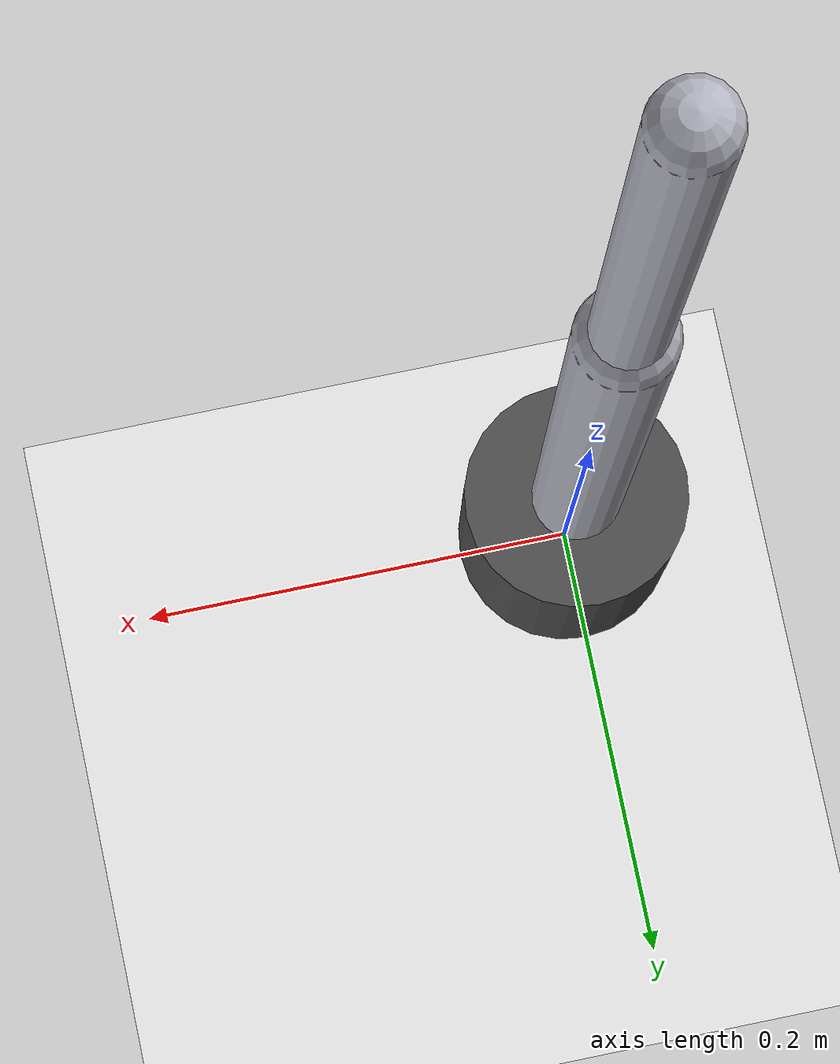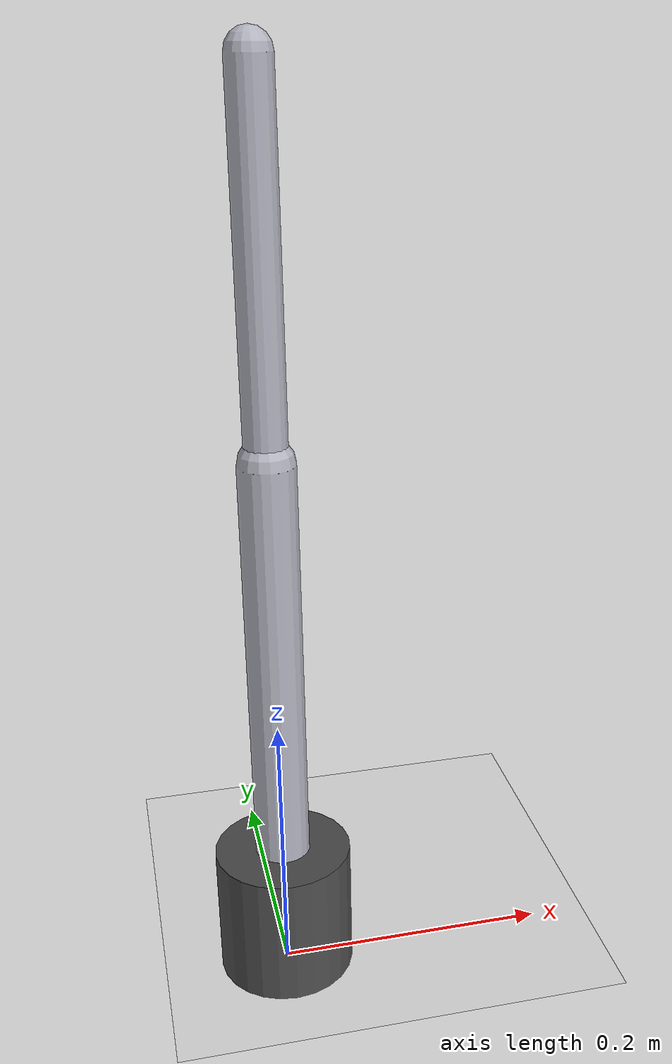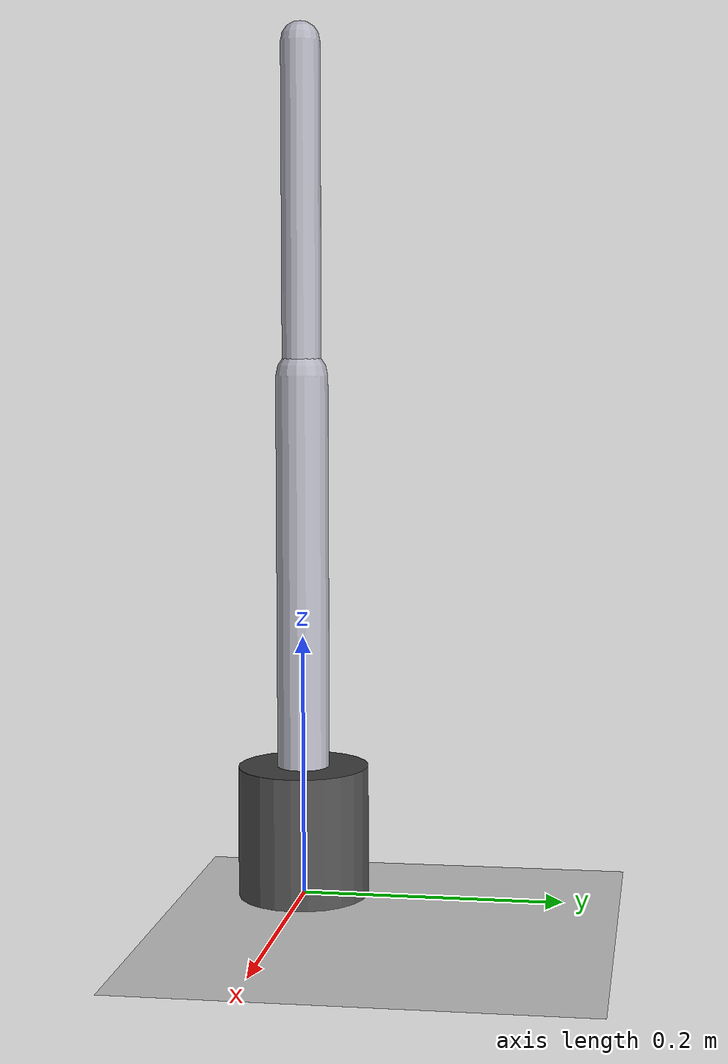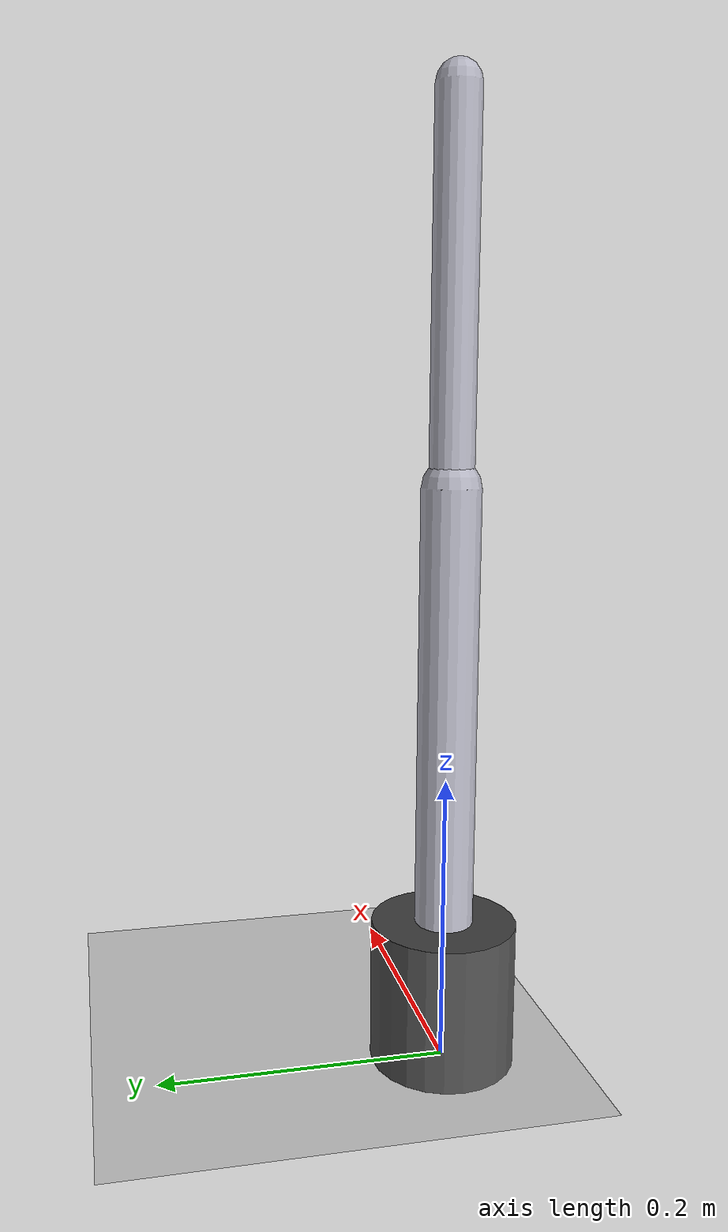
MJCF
<mujoco model="simple_arm">

  <compiler angle="radian" coordinate="local"/>

  <option gravity="0 0 -9.81" timestep="0.002"/>

  <default>
    <joint damping="0.5"/>
    <geom rgba="0.7 0.7 0.75 1"/>
  </default>

  <worldbody>
    <!-- Lighting and ground plane so the scene is visible in the viewer -->
    <light name="key_light" diffuse="0.8 0.8 0.8" pos="0 0 3" dir="0 0 -1"/>
    <geom name="floor" type="plane" size="2 2 0.1" rgba="0.9 0.9 0.9 1"/>

    <!-- Fixed base: no joint, so it stays welded to the world -->
    <body name="base" pos="0 0 0.05">
        <geom name="base_geom" type="cylinder" size="0.05 0.05" rgba="0.3 0.3 0.3 1"/>

        <!-- First nested body: upper arm, driven by the shoulder hinge -->
        <body name="upper_arm" pos="0 0 0.05">
          <joint name="shoulder_joint" type="hinge" axis="0 1 0"
               range="-1.5708 1.5708" limited="true" damping="0.5"/>
          <geom name="upper_arm_geom" type="capsule"
              fromto="0 0 0  0 0 0.3" size="0.02"/>

          <!-- Second nested body: forearm, driven by the elbow hinge -->
          <body name="forearm" pos="0 0 0.3">
            <joint name="elbow_joint" type="hinge" axis="0 1 0"
                   range="-2.0944 0" limited="true" damping="0.5"/>
            <geom name="forearm_geom" type="capsule"
                  fromto="0 0 0 0 0 0.25" size="0.015"/>

            <site name="tip_site" pos="0 0 0.25" size="0.01" rgba="1 0 0 1"/>
          </body>
        </body>
    </body>
  </worldbody>

  <sensor>
    <framepos name="tip_position_sensor" objtype="site" objname="tip_site"/>
  </sensor>

  <actuator>
    <!-- Position actuators: safer starting point than raw torque motors
         for a first joint-control demo (see docs/mjcf_notes.md). -->
    <position name="shoulder_actuator" joint="shoulder_joint"
              kp="20" ctrlrange="-1.5708 1.5708"/>
    <position name="elbow_actuator" joint="elbow_joint"
              kp="15" ctrlrange="-2.0944 0"/>
  </actuator>

</mujoco>
